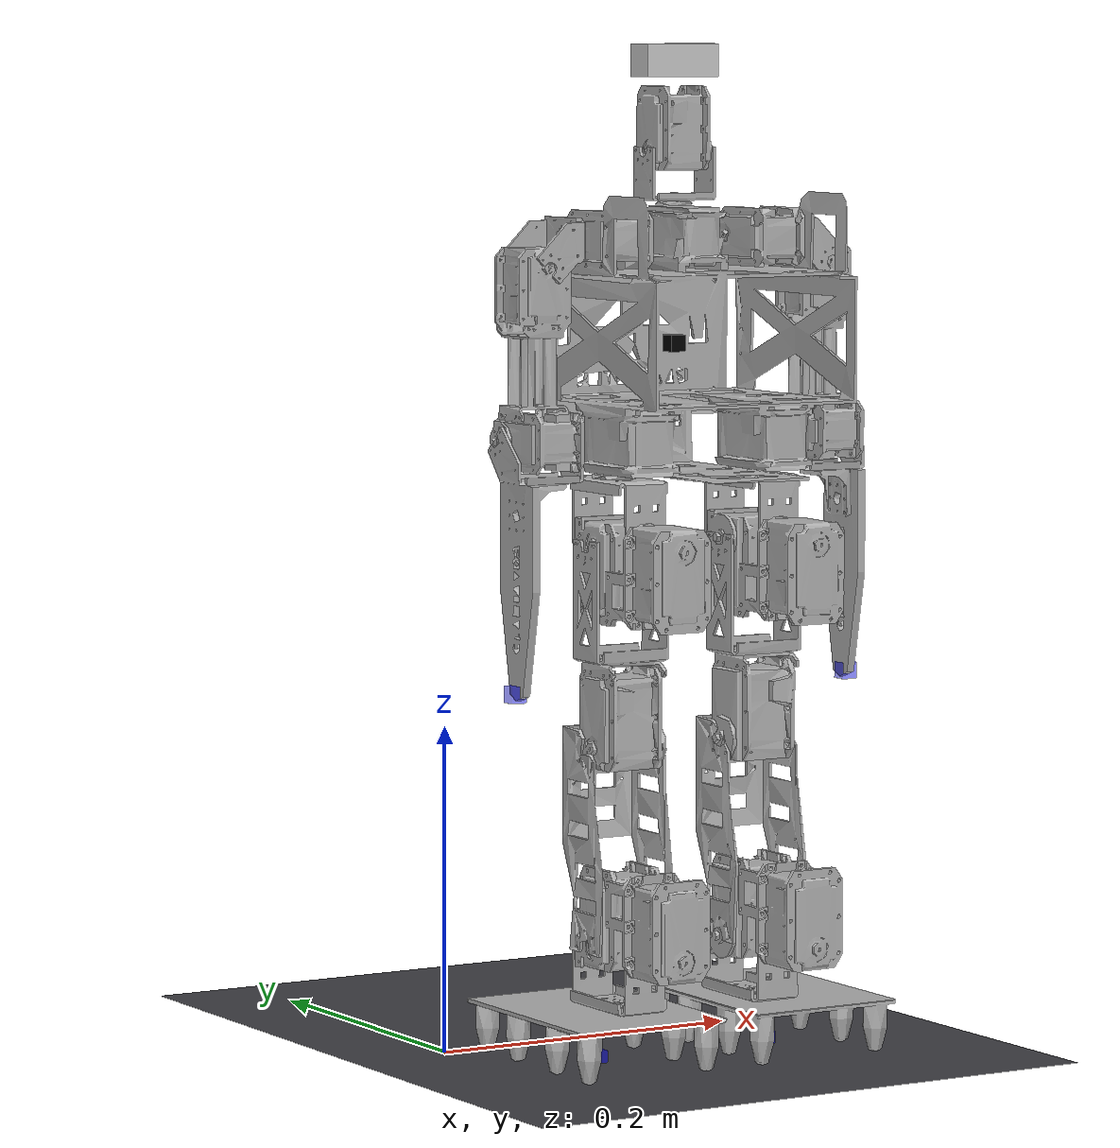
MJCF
<mujoco model="darnet">
  <compiler angle="radian" />

  <option gravity="0 0 -9.81" />

  <asset>
    <mesh name="base_link" content_type="model/stl" file="/home/ariqmau/gladitos/Simulasi-Gazebo-Darnet/src/darnet_description/meshes/base_link.stl" scale="0.001 0.001 0.001" />
    <mesh name="Konektor_Leher_1" content_type="model/stl" file="/home/ariqmau/gladitos/Simulasi-Gazebo-Darnet/src/darnet_description/meshes/Konektor_Leher_1.stl" scale="0.001 0.001 0.001" />
    <mesh name="Kepala_4" content_type="model/stl" file="/home/ariqmau/gladitos/Simulasi-Gazebo-Darnet/src/darnet_description/meshes/Kepala_4.stl" scale="0.001 0.001 0.001" />
    <mesh name="Konektor_Bahu__3" content_type="model/stl" file="/home/ariqmau/gladitos/Simulasi-Gazebo-Darnet/src/darnet_description/meshes/Konektor_Bahu__3.stl" scale="0.001 0.001 0.001" />
    <mesh name="Lengan_Kiri_1" content_type="model/stl" file="/home/ariqmau/gladitos/Simulasi-Gazebo-Darnet/src/darnet_description/meshes/Lengan_Kiri_1.stl" scale="0.001 0.001 0.001" />
    <mesh name="Tangan_Kiri_1" content_type="model/stl" file="/home/ariqmau/gladitos/Simulasi-Gazebo-Darnet/src/darnet_description/meshes/Tangan_Kiri_1.stl" scale="0.001 0.001 0.001" />
    <mesh name="Konektor_Bahu__1" content_type="model/stl" file="/home/ariqmau/gladitos/Simulasi-Gazebo-Darnet/src/darnet_description/meshes/Konektor_Bahu__1.stl" scale="0.001 0.001 0.001" />
    <mesh name="Lengan_Kanan_1" content_type="model/stl" file="/home/ariqmau/gladitos/Simulasi-Gazebo-Darnet/src/darnet_description/meshes/Lengan_Kanan_1.stl" scale="0.001 0.001 0.001" />
    <mesh name="Tangan_Kanan_1" content_type="model/stl" file="/home/ariqmau/gladitos/Simulasi-Gazebo-Darnet/src/darnet_description/meshes/Tangan_Kanan_1.stl" scale="0.001 0.001 0.001" />
    <mesh name="Paha_Atas_4" content_type="model/stl" file="/home/ariqmau/gladitos/Simulasi-Gazebo-Darnet/src/darnet_description/meshes/Paha_Atas_4.stl" scale="0.001 0.001 0.001" />
    <mesh name="Paha_Atas_3" content_type="model/stl" file="/home/ariqmau/gladitos/Simulasi-Gazebo-Darnet/src/darnet_description/meshes/Paha_Atas_3.stl" scale="0.001 0.001 0.001" />
    <mesh name="Paha_Kanan_1" content_type="model/stl" file="/home/ariqmau/gladitos/Simulasi-Gazebo-Darnet/src/darnet_description/meshes/Paha_Kanan_1.stl" scale="0.001 0.001 0.001" />
    <mesh name="Paha_Kiri_1" content_type="model/stl" file="/home/ariqmau/gladitos/Simulasi-Gazebo-Darnet/src/darnet_description/meshes/Paha_Kiri_1.stl" scale="0.001 0.001 0.001" />
    <mesh name="Lutut_Kiri__1" content_type="model/stl" file="/home/ariqmau/gladitos/Simulasi-Gazebo-Darnet/src/darnet_description/meshes/Lutut_Kiri__1.stl" scale="0.001 0.001 0.001" />
    <mesh name="Lutut_Kanan_1" content_type="model/stl" file="/home/ariqmau/gladitos/Simulasi-Gazebo-Darnet/src/darnet_description/meshes/Lutut_Kanan_1.stl" scale="0.001 0.001 0.001" />
    <mesh name="Betis_2" content_type="model/stl" file="/home/ariqmau/gladitos/Simulasi-Gazebo-Darnet/src/darnet_description/meshes/Betis_2.stl" scale="0.001 0.001 0.001" />
    <mesh name="Betis_1" content_type="model/stl" file="/home/ariqmau/gladitos/Simulasi-Gazebo-Darnet/src/darnet_description/meshes/Betis_1.stl" scale="0.001 0.001 0.001" />
    <mesh name="Mata_Kaki_Kiri_1" content_type="model/stl" file="/home/ariqmau/gladitos/Simulasi-Gazebo-Darnet/src/darnet_description/meshes/Mata_Kaki_Kiri_1.stl" scale="0.001 0.001 0.001" />
    <mesh name="Kaki_Kiri_1" content_type="model/stl" file="/home/ariqmau/gladitos/Simulasi-Gazebo-Darnet/src/darnet_description/meshes/Kaki_Kiri_1.stl" scale="0.001 0.001 0.001" />
    <mesh name="Mata_Kaki_Kanan_1" content_type="model/stl" file="/home/ariqmau/gladitos/Simulasi-Gazebo-Darnet/src/darnet_description/meshes/Mata_Kaki_Kanan_1.stl" scale="0.001 0.001 0.001" />
    <mesh name="Kaki_Kanan_1" content_type="model/stl" file="/home/ariqmau/gladitos/Simulasi-Gazebo-Darnet/src/darnet_description/meshes/Kaki_Kanan_1.stl" scale="0.001 0.001 0.001" />
  </asset>

    <asset>
    <texture name="skybox" type="skybox" builtin="gradient" rgb1="0.45 0.55 0.65" rgb2="0.06 0.07 0.09" width="512" height="512" />
    <texture name="groundtex" type="2d" builtin="checker" rgb1="0.2 0.2 0.22" rgb2="0.3 0.3 0.32" width="300" height="300" />
    <material name="groundmat" texture="groundtex" texrepeat="6 6" reflectance="0.1" />
  </asset>
  <worldbody>
    <light directional="true" pos="0 0 3" dir="0 0 -1" diffuse="0.7 0.7 0.7" />
    <geom name="ground" type="plane" size="2 2 0.05" material="groundmat" group="1" />

    <body name="base_link" pos="0 0 0"><freejoint name="root" /><inertial pos="0.12558372774814963 -0.07386522357602478 0.43247306079321574" mass="1.2606121985073475" fullinertia="0.00507 0.006653 0.003975 -1e-06 1e-06 -0.00033" /><geom type="mesh" contype="0" conaffinity="0" group="1" rgba="0.7 0.7 0.7 1" density="0" mesh="base_link" />
    <geom type="mesh" rgba="0.7 0.7 0.7 1" mesh="base_link" />
    <geom size="0.005 0.005 0.005" pos="0.125659 -0.060429 0.432023" type="box" contype="0" conaffinity="0" group="1" rgba="0 0 0 1" density="0" />
    <body name="Konektor_Leher_1" pos="0.125659 -0.060429 0.520233">
      <inertial pos="2.06884e-06 -0.00102181 0.00699377" quat="0.5 0.5 0.5 0.5" mass="0.00461193" diaginertia="2e-06 2e-06 1e-06" />
      <joint name="Leher Putar" range="-3.14159 3.14159" actuatorfrcrange="-10 10" damping="0.5" axis="0 0 -1" />
      <geom pos="-0.125659 0.060429 -0.520233" quat="1 0 0 0" type="mesh" contype="0" conaffinity="0" group="1" rgba="0.7 0.7 0.7 1" density="0" mesh="Konektor_Leher_1" />
      <geom pos="-0.125659 0.060429 -0.520233" quat="1 0 0 0" type="mesh" rgba="0.7 0.7 0.7 1" mesh="Konektor_Leher_1" />
      <body name="Kepala_4" pos="0.0225 0 0.028">
        <inertial pos="-0.0230044 -1.98836e-05 0.0161701" quat="0.706934 -0.013991 -0.0137411 0.707008" mass="0.0869832" diaginertia="0.000137994 0.000134022 0.000113972" />
        <joint name="Kepala Putar" range="-3.14159 3.14159" actuatorfrcrange="-10 10" damping="0.5" axis="-1 0 0" />
        <geom pos="-0.148159 0.060429 -0.548233" quat="1 0 0 0" type="mesh" contype="0" conaffinity="0" group="1" rgba="0.7 0.7 0.7 1" density="0" mesh="Kepala_4" />
        <geom pos="-0.148159 0.060429 -0.548233" quat="1 0 0 0" type="mesh" rgba="0.7 0.7 0.7 1" mesh="Kepala_4" />
        <geom size="0.01 0.025 0.01" pos="-0.0225 0 0.05379" quat="0.707141 0 0 0.707073" type="box" contype="0" conaffinity="0" group="1" rgba="0.8 0.8 0.8 1" density="0" />
        <geom size="0.01 0.025 0.01" pos="-0.0225 0 0.05379" quat="0.707141 0 0 0.707073" type="box" rgba="0.8 0.8 0.8 1" />
      </body>
    </body>
    <body name="Konektor_Bahu__3" pos="0.048157 -0.060473 0.495956">
      <inertial pos="-0.00606108 -2.42562e-06 -0.00262816" quat="0.707107 0.707107 0 0" mass="0.0133706" diaginertia="5e-06 5e-06 2e-06" />
      <joint name="Lengan Kiri" range="-3.14159 3.14159" actuatorfrcrange="-10 10" damping="1.5" axis="1 0.000471 0" />
      <geom pos="-0.048157 0.060473 -0.495956" quat="1 0 0 0" type="mesh" contype="0" conaffinity="0" group="1" rgba="0.7 0.7 0.7 1" density="0" mesh="Konektor_Bahu__3" />
      <geom pos="-0.048157 0.060473 -0.495956" quat="1 0 0 0" type="mesh" rgba="0.7 0.7 0.7 1" mesh="Konektor_Bahu__3" />
      <body name="Lengan_Kiri_1" pos="-0.02251 0.02249 -0.016">
        <inertial pos="-0.000130861 -0.0265068 -0.0575102" quat="0.997288 -0.0417453 0.00390884 0.0604798" mass="0.171165" diaginertia="0.000371134 0.000362137 3.87284e-05" />
        <joint name="Bahu Tangan Kiri" range="-3.14159 3.14159" actuatorfrcrange="-10 10" damping="1.5" axis="-0.000471 1 0" />
        <geom pos="-0.025647 0.037983 -0.479956" type="mesh" contype="0" conaffinity="0" group="1" rgba="0.7 0.7 0.7 1" density="0" mesh="Lengan_Kiri_1" />
        <geom pos="-0.025647 0.037983 -0.479956" type="mesh" rgba="0.7 0.7 0.7 1" mesh="Lengan_Kiri_1" />
        <body name="Tangan_Kiri_1" pos="-0.023341 -0.019361 -0.1028">
          <inertial pos="0.0111126 -0.0154869 -0.0664703" quat="0.99203 -0.00431193 0.0472334 0.116738" mass="0.0279625" diaginertia="0.00015368 0.000153272 0.000104598" />
          <joint name="Tangan Kiri" range="-3.14159 3.14159" actuatorfrcrange="-10 10" damping="0.3" axis="1 0.000471 0" />
          <geom pos="-0.002306 0.057344 -0.377156" quat="1 0 0 0" type="mesh" contype="0" conaffinity="0" group="1" rgba="0.7 0.7 0.7 1" density="0" mesh="Tangan_Kiri_1" />
          <geom pos="-0.002306 0.057344 -0.377156" quat="1 0 0 0" type="mesh" rgba="0.7 0.7 0.7 1" mesh="Tangan_Kiri_1" />
          <geom size="0.005 0.005 0.005" pos="0.005 -0.015 -0.15" type="box" contype="0" conaffinity="0" group="1" rgba="0 0 1 0.5" density="0" />
        </body>
      </body>
    </body>
    <body name="Konektor_Bahu__1" pos="0.202784 -0.0604 0.495956">
      <inertial pos="0.00606151 3.10194e-06 -0.00262816" quat="0.707107 0.707107 0 0" mass="0.0133706" diaginertia="5e-06 5e-06 2e-06" />
      <joint name="Lengan Kanan" range="-3.14159 3.14159" actuatorfrcrange="-10 10" damping="1.5" axis="-1 -0.000471 0" />
      <geom pos="-0.202784 0.0604 -0.495956" quat="1 0 0 0" type="mesh" contype="0" conaffinity="0" group="1" rgba="0.7 0.7 0.7 1" density="0" mesh="Konektor_Bahu__1" />
      <geom pos="-0.202784 0.0604 -0.495956" quat="1 0 0 0" type="mesh" rgba="0.7 0.7 0.7 1" mesh="Konektor_Bahu__1" />
      <body name="Lengan_Kanan_1" pos="0.022489 0.022511 -0.016">
        <inertial pos="0.000121932 -0.0265068 -0.0575298" quat="0.997288 -0.0417453 -0.00390884 -0.0604798" mass="0.171165" diaginertia="0.000371134 0.000362137 3.87284e-05" />
        <joint name="Bahu Tangan Kanan" range="-3.14159 3.14159" actuatorfrcrange="-10 10" damping="1.5" axis="0.000471 -1 0" />
        <geom pos="-0.225273 0.037889 -0.479956" type="mesh" contype="0" conaffinity="0" group="1" rgba="0.7 0.7 0.7 1" density="0" mesh="Lengan_Kanan_1" />
        <geom pos="-0.225273 0.037889 -0.479956" type="mesh" rgba="0.7 0.7 0.7 1" mesh="Lengan_Kanan_1" />
        <body name="Tangan_Kanan_1" pos="0.023359 -0.019339 -0.1028">
          <inertial pos="-0.0110655 -0.0154968 -0.0665288" quat="0.992042 -0.00431392 -0.0471969 -0.116651" mass="0.027938" diaginertia="0.000153669 0.000153261 0.000104599" />
          <joint name="Tangan Kanan" range="-3.14159 3.14159" actuatorfrcrange="-10 10" damping="0.3" axis="-1 -0.000471 0" />
          <geom pos="-0.248632 0.057228 -0.377156" quat="1 0 0 0" type="mesh" contype="0" conaffinity="0" group="1" rgba="0.7 0.7 0.7 1" density="0" mesh="Tangan_Kanan_1" />
          <geom pos="-0.248632 0.057228 -0.377156" quat="1 0 0 0" type="mesh" rgba="0.7 0.7 0.7 1" mesh="Tangan_Kanan_1" />
          <geom size="0.005 0.005 0.005" pos="-0.005 -0.015 -0.15" type="box" contype="0" conaffinity="0" group="1" rgba="0 0 1 0.5" density="0" />
        </body>
      </body>
    </body>
    <body name="Paha_Atas_4" pos="0.078463 -0.069966 0.351036">
      <inertial pos="3.14757e-07 -0.00375673 -0.00840267" quat="0.707107 0.707107 0 0" mass="0.0230031" diaginertia="1.7e-05 1.6e-05 6e-06" />
      <joint name="Paha Kiri Putar" range="-3.14159 3.14159" actuatorfrcrange="-40 40" damping="5" />
      <geom pos="-0.078463 0.069966 -0.351036" quat="1 0 0 0" type="mesh" contype="0" conaffinity="0" group="1" rgba="0.7 0.7 0.7 1" density="0" mesh="Paha_Atas_4" />
      <geom pos="-0.078463 0.069966 -0.351036" quat="1 0 0 0" type="mesh" rgba="0.7 0.7 0.7 1" mesh="Paha_Atas_4" />
      <body name="Paha_Kiri_1" pos="0 -0.032853 -0.036545">
        <inertial pos="0.000215426 0.00253712 -0.0148985" quat="0.687888 0.725353 0.0166943 -0.0198503" mass="0.270035" diaginertia="0.000292107 0.000254322 0.000102571" />
        <joint name="Paha Atas Kiri" range="-3.14159 3.14159" actuatorfrcrange="-40 40" damping="5" axis="0 -1 0" />
        <geom pos="-0.078463 0.102819 -0.314491" quat="1 0 0 0" type="mesh" contype="0" conaffinity="0" group="1" rgba="0.7 0.7 0.7 1" density="0" mesh="Paha_Kiri_1" />
        <geom pos="-0.078463 0.102819 -0.314491" quat="1 0 0 0" type="mesh" rgba="0.7 0.7 0.7 1" mesh="Paha_Kiri_1" />
        <body name="Lutut_Kiri__1" pos="0.0253 0.0264 0">
          <inertial pos="-0.0251129 -3.66526e-05 -0.0996574" quat="0.707042 -0.00954592 -0.00954592 0.707042" mass="0.150079" diaginertia="0.00013 0.000115054 4.0946e-05" />
          <joint name="Paha Bawah Kiri" range="-3.14159 3.14159" actuatorfrcrange="-55 55" damping="3" axis="-1 0 0" />
          <geom pos="-0.103763 0.076419 -0.314491" quat="1 0 0 0" type="mesh" contype="0" conaffinity="0" group="1" rgba="0.7 0.7 0.7 1" density="0" mesh="Lutut_Kiri__1" />
          <geom pos="-0.103763 0.076419 -0.314491" quat="1 0 0 0" type="mesh" rgba="0.7 0.7 0.7 1" mesh="Lutut_Kiri__1" />
          <body name="Betis_2" pos="-0.0002 0 -0.1228">
            <inertial pos="-0.0255002 0.0100884 -0.0481478" quat="0.703352 -0.0727755 0.0727755 0.703352" mass="0.0537446" diaginertia="0.000104928 8.6e-05 3.50715e-05" />
            <joint name="Lutut Kiri" range="-3.14159 3.14159" actuatorfrcrange="-55 55" damping="3" axis="-1 0 0" />
            <geom pos="-0.103563 0.076419 -0.191691" quat="1 0 0 0" type="mesh" contype="0" conaffinity="0" group="1" rgba="0.7 0.7 0.7 1" density="0" mesh="Betis_2" />
            <geom pos="-0.103563 0.076419 -0.191691" quat="1 0 0 0" type="mesh" rgba="0.7 0.7 0.7 1" mesh="Betis_2" />
            <body name="Mata_Kaki_Kiri_1" pos="0 0 -0.121129">
              <inertial pos="-0.0250848 -0.0238629 0.0148989" quat="0.725353 0.687888 -0.0198503 0.0166943" mass="0.270035" diaginertia="0.000292107 0.000254322 0.000102571" />
              <joint name="Kaki Kiri Atas" range="-3.14159 3.14159" actuatorfrcrange="-25 25" damping="1" axis="-1 0 0" />
              <geom pos="-0.103563 0.076419 -0.070562" quat="1 0 0 0" type="mesh" contype="0" conaffinity="0" group="1" rgba="0.7 0.7 0.7 1" density="0" mesh="Mata_Kaki_Kiri_1" />
              <geom pos="-0.103563 0.076419 -0.070562" quat="1 0 0 0" type="mesh" rgba="0.7 0.7 0.7 1" mesh="Mata_Kaki_Kiri_1" />
              <body name="Kaki_Kiri_1" pos="-0.0253 -0.0264 0">
                <inertial pos="-0.0116994 0.0323503 -0.0451628" quat="0.49116 0.495762 -0.502254 0.51061" mass="0.172747" diaginertia="0.000612136 0.000418454 0.000339556" />
                <joint name="Kaki Kiri Bawah" range="-3.14159 3.14159" actuatorfrcrange="-25 25" damping="1" axis="0 -1 0" />
                <geom pos="-0.078263 0.102819 -0.070562" quat="1 0 0 0" type="mesh" contype="0" conaffinity="0" group="1" rgba="0.7 0.7 0.7 1" density="0" mesh="Kaki_Kiri_1" />
                <geom size="0.05 0.0675 0.00125" pos="-0.014 0.032 -0.0393" type="box" rgba="0.7 0.7 0.7 1" />
                <geom size="0.005 0.005 0.005" pos="-0.013 0.0325 -0.069" type="box" contype="0" conaffinity="0" group="1" rgba="0 0 1 0.5" density="0" />
              </body>
            </body>
          </body>
        </body>
      </body>
    </body>
    <body name="Paha_Atas_3" pos="0.172863 -0.069922 0.351036">
      <inertial pos="3.04289e-07 -0.00375627 -0.00840267" quat="0.707107 0.707107 0 0" mass="0.0230031" diaginertia="1.7e-05 1.6e-05 6e-06" />
      <joint name="Paha Kanan Putar" range="-3.14159 3.14159" actuatorfrcrange="-40 40" damping="5" />
      <geom pos="-0.172863 0.069922 -0.351036" quat="1 0 0 0" type="mesh" contype="0" conaffinity="0" group="1" rgba="0.7 0.7 0.7 1" density="0" mesh="Paha_Atas_3" />
      <geom pos="-0.172863 0.069922 -0.351036" quat="1 0 0 0" type="mesh" rgba="0.7 0.7 0.7 1" mesh="Paha_Atas_3" />
      <body name="Paha_Kanan_1" pos="0 -0.032853 -0.036545">
        <inertial pos="-0.000214805 0.00253758 -0.0148985" quat="0.687888 0.725353 -0.0166943 0.0198503" mass="0.270035" diaginertia="0.000292107 0.000254322 0.000102571" />
        <joint name="Paha Atas Kanan" range="-3.14159 3.14159" actuatorfrcrange="-40 40" damping="5" axis="0 -1 0" />
        <geom pos="-0.172863 0.102775 -0.314491" quat="1 0 0 0" type="mesh" contype="0" conaffinity="0" group="1" rgba="0.7 0.7 0.7 1" density="0" mesh="Paha_Kanan_1" />
        <geom pos="-0.172863 0.102775 -0.314491" quat="1 0 0 0" type="mesh" rgba="0.7 0.7 0.7 1" mesh="Paha_Kanan_1" />
        <body name="Lutut_Kanan_1" pos="-0.0253 0.0264 0">
          <inertial pos="0.0251142 -3.61831e-05 -0.0997855" quat="0.707044 0.00941889 0.00941889 0.707044" mass="0.150335" diaginertia="0.000131 0.000116053 4.09467e-05" />
          <joint name="Paha Bawah Kanan" range="-3.14159 3.14159" actuatorfrcrange="-55 55" damping="3" axis="1 0 0" />
          <geom pos="-0.147563 0.076375 -0.314491" quat="1 0 0 0" type="mesh" contype="0" conaffinity="0" group="1" rgba="0.7 0.7 0.7 1" density="0" mesh="Lutut_Kanan_1" />
          <geom pos="-0.147563 0.076375 -0.314491" quat="1 0 0 0" type="mesh" rgba="0.7 0.7 0.7 1" mesh="Lutut_Kanan_1" />
          <body name="Betis_1" pos="0.000201 0 -0.123">
            <inertial pos="0.0254998 0.0100889 -0.0481478" quat="0.703352 -0.0727755 0.0727755 0.703352" mass="0.0537446" diaginertia="0.000104928 8.6e-05 3.50715e-05" />
            <joint name="Lutut Kanan" range="-3.14159 3.14159" actuatorfrcrange="-55 55" damping="3" axis="1 0 0" />
            <geom pos="-0.147764 0.076375 -0.191491" quat="1 0 0 0" type="mesh" contype="0" conaffinity="0" group="1" rgba="0.7 0.7 0.7 1" density="0" mesh="Betis_1" />
            <geom pos="-0.147764 0.076375 -0.191491" quat="1 0 0 0" type="mesh" rgba="0.7 0.7 0.7 1" mesh="Betis_1" />
            <body name="Mata_Kaki_Kanan_1" pos="0 0 -0.121129">
              <inertial pos="0.0250844 -0.0238624 0.0148989" quat="0.725353 0.687888 0.0198503 -0.0166943" mass="0.270035" diaginertia="0.000292107 0.000254322 0.000102571" />
              <joint name="Kaki Kanan Atas" range="-3.14159 3.14159" actuatorfrcrange="-25 25" damping="1" axis="1 0 0" />
              <geom pos="-0.147764 0.076375 -0.070362" quat="1 0 0 0" type="mesh" contype="0" conaffinity="0" group="1" rgba="0.7 0.7 0.7 1" density="0" mesh="Mata_Kaki_Kanan_1" />
              <geom pos="-0.147764 0.076375 -0.070362" quat="1 0 0 0" type="mesh" rgba="0.7 0.7 0.7 1" mesh="Mata_Kaki_Kanan_1" />
              <body name="Kaki_Kanan_1" pos="0.0253 -0.0264 0">
                <inertial pos="0.011699 0.0323508 -0.0451628" quat="0.51061 0.502254 -0.495762 0.49116" mass="0.172747" diaginertia="0.000612136 0.000418454 0.000339556" />
                <joint name="Kaki Kanan Bawah" range="-3.14159 3.14159" actuatorfrcrange="-25 25" damping="1" axis="0 -1 0" />
                <geom pos="-0.173064 0.102775 -0.070362" quat="1 0 0 0" type="mesh" contype="0" conaffinity="0" group="1" rgba="0.7 0.7 0.7 1" density="0" mesh="Kaki_Kanan_1" />
                <geom size="0.05 0.0675 0.00125" pos="0.014 0.032 -0.0393" type="box" rgba="0.7 0.7 0.7 1" />
                <geom size="0.005 0.005 0.005" pos="0.013 0.0325 -0.069" type="box" contype="0" conaffinity="0" group="1" rgba="0 0 1 0.5" density="0" />
              </body>
            </body>
          </body>
        </body>
      </body>
    </body>
  </body></worldbody>
<actuator><position name="Leher Putar_act" joint="Leher Putar" kp="6.000" ctrlrange="-3.14159 3.14159" forcerange="-10 10" /><position name="Kepala Putar_act" joint="Kepala Putar" kp="6.000" ctrlrange="-3.14159 3.14159" forcerange="-10 10" /><position name="Lengan Kiri_act" joint="Lengan Kiri" kp="6.000" ctrlrange="-3.14159 3.14159" forcerange="-10 10" /><position name="Bahu Tangan Kiri_act" joint="Bahu Tangan Kiri" kp="6.000" ctrlrange="-3.14159 3.14159" forcerange="-10 10" /><position name="Tangan Kiri_act" joint="Tangan Kiri" kp="6.000" ctrlrange="-3.14159 3.14159" forcerange="-10 10" /><position name="Lengan Kanan_act" joint="Lengan Kanan" kp="6.000" ctrlrange="-3.14159 3.14159" forcerange="-10 10" /><position name="Bahu Tangan Kanan_act" joint="Bahu Tangan Kanan" kp="6.000" ctrlrange="-3.14159 3.14159" forcerange="-10 10" /><position name="Tangan Kanan_act" joint="Tangan Kanan" kp="6.000" ctrlrange="-3.14159 3.14159" forcerange="-10 10" /><position name="Paha Kiri Putar_act" joint="Paha Kiri Putar" kp="24.000" ctrlrange="-3.14159 3.14159" forcerange="-40 40" /><position name="Paha Atas Kiri_act" joint="Paha Atas Kiri" kp="24.000" ctrlrange="-3.14159 3.14159" forcerange="-40 40" /><position name="Paha Bawah Kiri_act" joint="Paha Bawah Kiri" kp="33.000" ctrlrange="-3.14159 3.14159" forcerange="-55 55" /><position name="Lutut Kiri_act" joint="Lutut Kiri" kp="33.000" ctrlrange="-3.14159 3.14159" forcerange="-55 55" /><position name="Kaki Kiri Atas_act" joint="Kaki Kiri Atas" kp="15.000" ctrlrange="-3.14159 3.14159" forcerange="-25 25" /><position name="Kaki Kiri Bawah_act" joint="Kaki Kiri Bawah" kp="15.000" ctrlrange="-3.14159 3.14159" forcerange="-25 25" /><position name="Paha Kanan Putar_act" joint="Paha Kanan Putar" kp="24.000" ctrlrange="-3.14159 3.14159" forcerange="-40 40" /><position name="Paha Atas Kanan_act" joint="Paha Atas Kanan" kp="24.000" ctrlrange="-3.14159 3.14159" forcerange="-40 40" /><position name="Paha Bawah Kanan_act" joint="Paha Bawah Kanan" kp="33.000" ctrlrange="-3.14159 3.14159" forcerange="-55 55" /><position name="Lutut Kanan_act" joint="Lutut Kanan" kp="33.000" ctrlrange="-3.14159 3.14159" forcerange="-55 55" /><position name="Kaki Kanan Atas_act" joint="Kaki Kanan Atas" kp="15.000" ctrlrange="-3.14159 3.14159" forcerange="-25 25" /><position name="Kaki Kanan Bawah_act" joint="Kaki Kanan Bawah" kp="15.000" ctrlrange="-3.14159 3.14159" forcerange="-25 25" /></actuator></mujoco>
